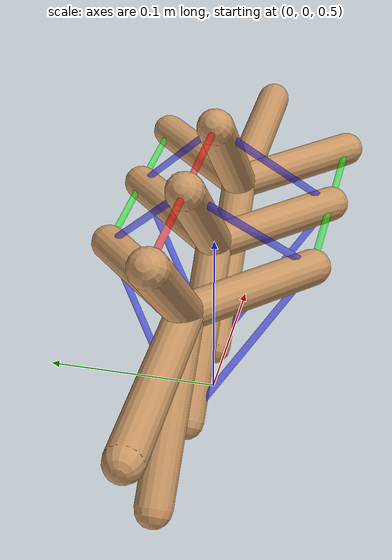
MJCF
<mujoco model="unnamed_model">
  <compiler angle="radian"/>
  <option timestep="0.002" integrator="implicitfast" iterations="100" ls_iterations="50"/>
  <default>
    <default class="/">
      <default class="tq1">
        <joint type="hinge" limited="true" armature="0.0050000000000000001" damping="0.5" frictionloss="0.001"/>
        <geom contype="0" conaffinity="0" condim="3"/>
        <position ctrlrange="-2.3559999999999999 2.3559999999999999" forcerange="-50 50" kp="50"/>
        <default class="vertebra_geom">
          <geom type="capsule" contype="1" conaffinity="1" group="1" size="0.01" rgba="0.80000000000000004 0.59999999999999998 0.40000000000000002 1" density="1750"/>
        </default>
        <default class="leg_geom">
          <geom type="capsule" conaffinity="0" group="1" size="0.02" rgba="0.80000000000000004 0.59999999999999998 0.40000000000000002 1" density="1750"/>
        </default>
        <default class="lateral_tendon">
          <tendon frictionloss="0.02" width="0.002" rgba="1 0 0 0.5" stiffness="5000" damping="5"/>
        </default>
        <default class="diagonal_tendon">
          <tendon frictionloss="0.02" width="0.002" rgba="0 0 1 0.5" stiffness="15000" damping="5"/>
        </default>
        <default class="lateral_top">
          <tendon frictionloss="0.02" width="0.002" stiffness="1000" damping="5" rgba="1 0 0 0.5"/>
        </default>
        <default class="lateral_bottom">
          <tendon frictionloss="0.02" width="0.002" stiffness="1000" damping="5" rgba="1 0 0 0.5"/>
        </default>
        <default class="lateral_left">
          <tendon frictionloss="0.02" width="0.002" stiffness="1000" damping="5" rgba="0 1 0 0.5"/>
        </default>
        <default class="lateral_right">
          <tendon frictionloss="0.02" width="0.002" stiffness="1000" damping="5" rgba="0 1 0 0.5"/>
        </default>
        <default class="diag_a1b1">
          <tendon frictionloss="0.02" width="0.002" stiffness="1000" damping="5" rgba="0 0 1 0.5"/>
        </default>
        <default class="diag_a2b2">
          <tendon frictionloss="0.02" width="0.002" stiffness="1000" damping="5" rgba="0 0 1 0.5"/>
        </default>
        <default class="diag_a1b2">
          <tendon frictionloss="0.02" width="0.002" stiffness="1000" damping="5" rgba="0 0 1 0.5"/>
        </default>
        <default class="diag_a2b1">
          <tendon frictionloss="0.02" width="0.002" stiffness="1000" damping="5" rgba="0 0 1 0.5"/>
        </default>
      </default>
    </default>
  </default>
  <asset>
    <texture name="skybox" type="skybox" builtin="flat" rgb1="1 1 1" rgb2="1 1 1" mark="random" markrgb="1 1 1" width="800" height="800"/>
    <texture name="grid" type="2d" builtin="checker" width="512" height="512" rgb1="0.1 0.2 0.3" rgb2="0.2 0.3 0.4"/>
    <material name="grid" texture="grid" texrepeat="1 1" texuniform="true" reflectance="0.2"/>
  </asset>
  <worldbody>
    <light name="spotlight" mode="targetbodycom" target="vertebrae_1" pos="0 0 3" dir="0 0 -1" diffuse="0.8 0.8 0.8" specular="0.3 0.3 0.3"/>
    <geom name="floor" type="plane" size="5 5 0.1" rgba="0.5 0.5 0.5 1" material="grid"/>
    <body name="vertebrae_0" childclass="tq1" pos="0.070000000000000007 0 0.59999999999999998">
      <light name="tracking" mode="trackcom" pos="0 0 3" diffuse="0.59999999999999998 0.59999999999999998 0.59999999999999998"/>
      <camera name="track" mode="trackcom" pos="0.84599999999999997 -1.3 0.316" xyaxes="0.86599999999999999 0.5 0 -0.17100000000000001 0.29599999999999999 0.93999999999999995"/>
      <camera name="top" mode="trackcom" pos="-1 0 1" xyaxes="0 -1 0 0.69999999999999996 0 0.69999999999999996"/>
      <camera name="side" mode="trackcom" pos="0 -1 0.29999999999999999" xyaxes="1 0 0 0 1 2"/>
      <camera name="back" mode="trackcom" pos="-1 0 0.29999999999999999" xyaxes="0 -1 0 1 0 2"/>
      <camera name="overview" mode="trackcom" fovy="70" pos="-1 0 2" xyaxes="0 -1 0 0.5 0 0.5"/>
      <site name="com_vertebrae_1" size="0.0050000000000000001" pos="0.11809999999999998 0 0"/>
      <geom name="vertebrae_0_a1_geom" class="vertebra_geom" fromto="0 0 0 -0.070710678118654766 0 0.070710678118654766"/>
      <site name="vertebrae_0_a1" size="0.0050000000000000001" pos="-0.070710678118654766 0 0.070710678118654766"/>
      <geom name="vertebrae_0_a2_geom" class="vertebra_geom" fromto="0 0 0 -0.070710678118654766 0 -0.070710678118654766"/>
      <site name="vertebrae_0_a2" size="0.0050000000000000001" pos="-0.070710678118654766 0 -0.070710678118654766"/>
      <geom name="vertebrae_0_b1_geom" class="vertebra_geom" fromto="0 0 0 0.05656854249492381 0.05656854249492381 0"/>
      <site name="vertebrae_0_b1" size="0.0050000000000000001" pos="0.05656854249492381 0.05656854249492381 0"/>
      <geom name="vertebrae_0_b2_geom" class="vertebra_geom" fromto="0 0 0 0.05656854249492381 -0.05656854249492381 0"/>
      <site name="vertebrae_0_b2" size="0.0050000000000000001" pos="0.05656854249492381 -0.05656854249492381 0"/>
      <geom name="front_spacer" class="vertebra_geom" type="capsule" fromto="0 0 0 0.11809999999999998 0 0"/>
    </body>
    <body name="vertebrae_1" childclass="tq1" pos="0 0 0.59999999999999998">
      <joint name="joint_vertebrae_1" type="free"/>
      <geom name="vertebrae_1_a1_geom" class="vertebra_geom" fromto="0 0 0 -0.070710678118654766 0 0.070710678118654766"/>
      <site name="vertebrae_1_a1" size="0.0050000000000000001" pos="-0.070710678118654766 0 0.070710678118654766"/>
      <geom name="vertebrae_1_a2_geom" class="vertebra_geom" fromto="0 0 0 -0.070710678118654766 0 -0.070710678118654766"/>
      <site name="vertebrae_1_a2" size="0.0050000000000000001" pos="-0.070710678118654766 0 -0.070710678118654766"/>
      <geom name="vertebrae_1_b1_geom" class="vertebra_geom" fromto="0 0 0 0.05656854249492381 0.05656854249492381 0"/>
      <site name="vertebrae_1_b1" size="0.0050000000000000001" pos="0.05656854249492381 0.05656854249492381 0"/>
      <geom name="vertebrae_1_b2_geom" class="vertebra_geom" fromto="0 0 0 0.05656854249492381 -0.05656854249492381 0"/>
      <site name="vertebrae_1_b2" size="0.0050000000000000001" pos="0.05656854249492381 -0.05656854249492381 0"/>
    </body>
    <body name="vertebrae_2" childclass="tq1" pos="-0.070000000000000007 0 0.59999999999999998">
      <joint name="joint_vertebrae_2" type="free"/>
      <geom name="vertebrae_2_a1_geom" class="vertebra_geom" fromto="0 0 0 -0.070710678118654766 0 0.070710678118654766"/>
      <site name="vertebrae_2_a1" size="0.0050000000000000001" pos="-0.070710678118654766 0 0.070710678118654766"/>
      <geom name="vertebrae_2_a2_geom" class="vertebra_geom" fromto="0 0 0 -0.070710678118654766 0 -0.070710678118654766"/>
      <site name="vertebrae_2_a2" size="0.0050000000000000001" pos="-0.070710678118654766 0 -0.070710678118654766"/>
      <geom name="vertebrae_2_b1_geom" class="vertebra_geom" fromto="0 0 0 0.05656854249492381 0.05656854249492381 0"/>
      <site name="vertebrae_2_b1" size="0.0050000000000000001" pos="0.05656854249492381 0.05656854249492381 0"/>
      <geom name="vertebrae_2_b2_geom" class="vertebra_geom" fromto="0 0 0 0.05656854249492381 -0.05656854249492381 0"/>
      <site name="vertebrae_2_b2" size="0.0050000000000000001" pos="0.05656854249492381 -0.05656854249492381 0"/>
      <geom name="rear_spacer" class="vertebra_geom" type="capsule" fromto="0 0 0 -0.11809999999999998 0 0"/>
      <site name="spine_tip" size="0.0050000000000000001" pos="-0.11809999999999998 0 0"/>
    </body>
  </worldbody>
  <tendon>
    <spatial name="lat_a1_0" class="lateral_top" springlength="0.063000000000000014">
      <site site="vertebrae_0_a1"/>
      <site site="vertebrae_1_a1"/>
    </spatial>
    <spatial name="lat_a2_0" class="lateral_bottom" springlength="0.063000000000000014">
      <site site="vertebrae_0_a2"/>
      <site site="vertebrae_1_a2"/>
    </spatial>
    <spatial name="lat_b1_0" class="lateral_left" springlength="0.063000000000000014">
      <site site="vertebrae_0_b1"/>
      <site site="vertebrae_1_b1"/>
    </spatial>
    <spatial name="lat_b2_0" class="lateral_right" springlength="0.063000000000000014">
      <site site="vertebrae_0_b2"/>
      <site site="vertebrae_1_b2"/>
    </spatial>
    <spatial name="diag_a1b1_0" class="diag_a1b1" springlength="0.096434103834795865">
      <site site="vertebrae_0_a1"/>
      <site site="vertebrae_1_b1"/>
    </spatial>
    <spatial name="diag_a2b2_0" class="diag_a2b2" springlength="0.096434103834795865">
      <site site="vertebrae_0_a2"/>
      <site site="vertebrae_1_b2"/>
    </spatial>
    <spatial name="diag_a1b2_0" class="diag_a1b2" springlength="0.096434103834795865">
      <site site="vertebrae_0_a1"/>
      <site site="vertebrae_1_b2"/>
    </spatial>
    <spatial name="diag_a2b1_0" class="diag_a2b1" springlength="0.096434103834795865">
      <site site="vertebrae_0_a2"/>
      <site site="vertebrae_1_b1"/>
    </spatial>
    <spatial name="lat_a1_1" class="lateral_top" springlength="0.063000000000000014">
      <site site="vertebrae_1_a1"/>
      <site site="vertebrae_2_a1"/>
    </spatial>
    <spatial name="lat_a2_1" class="lateral_bottom" springlength="0.063000000000000014">
      <site site="vertebrae_1_a2"/>
      <site site="vertebrae_2_a2"/>
    </spatial>
    <spatial name="lat_b1_1" class="lateral_left" springlength="0.063000000000000014">
      <site site="vertebrae_1_b1"/>
      <site site="vertebrae_2_b1"/>
    </spatial>
    <spatial name="lat_b2_1" class="lateral_right" springlength="0.063000000000000014">
      <site site="vertebrae_1_b2"/>
      <site site="vertebrae_2_b2"/>
    </spatial>
    <spatial name="diag_a1b1_1" class="diag_a1b1" springlength="0.096434103834795865">
      <site site="vertebrae_1_a1"/>
      <site site="vertebrae_2_b1"/>
    </spatial>
    <spatial name="diag_a2b2_1" class="diag_a2b2" springlength="0.096434103834795865">
      <site site="vertebrae_1_a2"/>
      <site site="vertebrae_2_b2"/>
    </spatial>
    <spatial name="diag_a1b2_1" class="diag_a1b2" springlength="0.096434103834795865">
      <site site="vertebrae_1_a1"/>
      <site site="vertebrae_2_b2"/>
    </spatial>
    <spatial name="diag_a2b1_1" class="diag_a2b1" springlength="0.096434103834795865">
      <site site="vertebrae_1_a2"/>
      <site site="vertebrae_2_b1"/>
    </spatial>
  </tendon>
  <sensor>
    <framepos name="tip_position" objtype="site" objname="spine_tip"/>
    <framequat name="tip_orientation" objtype="site" objname="spine_tip"/>
    <framepos name="vertebrae_0_pos" objtype="body" objname="vertebrae_0"/>
    <framepos name="vertebrae_1_pos" objtype="body" objname="vertebrae_1"/>
    <framepos name="vertebrae_2_pos" objtype="body" objname="vertebrae_2"/>
  </sensor>
</mujoco>
